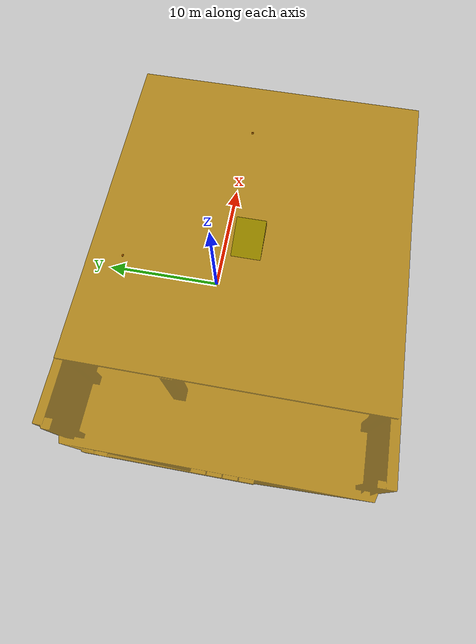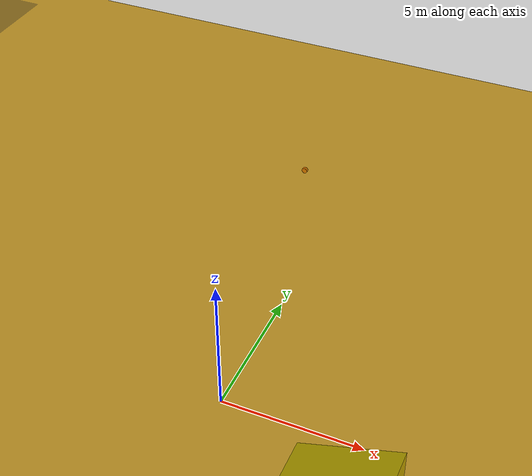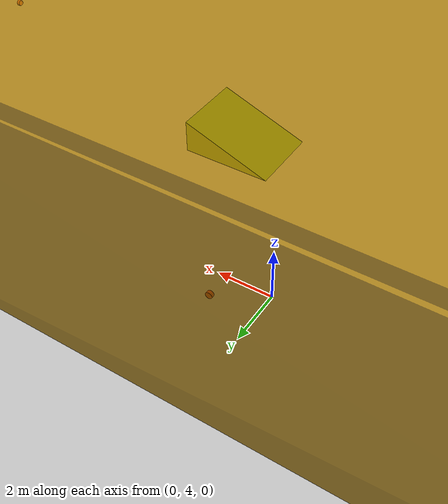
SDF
<?xml version="1.0" ?>
<!--
  You can echo lidar messages using:
    ign topic -e -t /lidar
-->
<sdf version="1.6">
  <world name="visualize_lidar_world">
    <physics name="1ms" type="ignored">
      <max_step_size>0.01</max_step_size>
      <real_time_factor>1.0</real_time_factor>
    </physics>

    <gui fullscreen="0">

      <!-- 3D scene -->
      <plugin filename="MinimalScene" name="3D View">
        <ignition-gui>
          <title>3D View</title>
          <property type="bool" key="showTitleBar">false</property>
          <property type="string" key="state">docked</property>
        </ignition-gui>

        <engine>ogre2</engine>
        <scene>scene</scene>
        <ambient_light>0.4 0.4 0.4</ambient_light>
        <background_color>0.8 0.8 0.8</background_color>
        <camera_pose>-6 0 6 0 0.5 0</camera_pose>
      </plugin>

      <!-- Plugins that add functionality to the scene -->
      <plugin filename="EntityContextMenuPlugin" name="Entity context menu">
        <ignition-gui>
          <property key="state" type="string">floating</property>
          <property key="width" type="double">5</property>
          <property key="height" type="double">5</property>
          <property key="showTitleBar" type="bool">false</property>
        </ignition-gui>
      </plugin>
      <plugin filename="GzSceneManager" name="Scene Manager">
        <ignition-gui>
          <property key="resizable" type="bool">false</property>
          <property key="width" type="double">5</property>
          <property key="height" type="double">5</property>
          <property key="state" type="string">floating</property>
          <property key="showTitleBar" type="bool">false</property>
        </ignition-gui>
      </plugin>
      <plugin filename="InteractiveViewControl" name="Interactive view control">
        <ignition-gui>
          <property key="resizable" type="bool">false</property>
          <property key="width" type="double">5</property>
          <property key="height" type="double">5</property>
          <property key="state" type="string">floating</property>
          <property key="showTitleBar" type="bool">false</property>
        </ignition-gui>
      </plugin>
      <plugin filename="CameraTracking" name="Camera Tracking">
        <ignition-gui>
          <property key="resizable" type="bool">false</property>
          <property key="width" type="double">5</property>
          <property key="height" type="double">5</property>
          <property key="state" type="string">floating</property>
          <property key="showTitleBar" type="bool">false</property>
        </ignition-gui>
      </plugin>
      <!-- World control -->
      <plugin filename="WorldControl" name="World control">
        <ignition-gui>
          <title>World control</title>
          <property type="bool" key="showTitleBar">false</property>
          <property type="bool" key="resizable">false</property>
          <property type="double" key="height">72</property>
          <property type="double" key="width">121</property>
          <property type="double" key="z">1</property>

          <property type="string" key="state">floating</property>
          <anchors target="3D View">
            <line own="left" target="left"/>
            <line own="bottom" target="bottom"/>
          </anchors>
        </ignition-gui>

        <play_pause>true</play_pause>
        <step>true</step>
        <start_paused>true</start_paused>
        <use_event>true</use_event>

      </plugin>

      <!-- World statistics -->
      <plugin filename="WorldStats" name="World stats">
        <ignition-gui>
          <title>World stats</title>
          <property type="bool" key="showTitleBar">false</property>
          <property type="bool" key="resizable">false</property>
          <property type="double" key="height">110</property>
          <property type="double" key="width">290</property>
          <property type="double" key="z">1</property>

          <property type="string" key="state">floating</property>
          <anchors target="3D View">
            <line own="right" target="right"/>
            <line own="bottom" target="bottom"/>
          </anchors>
        </ignition-gui>

        <sim_time>true</sim_time>
        <real_time>true</real_time>
        <real_time_factor>true</real_time_factor>
        <iterations>true</iterations>
      </plugin>

      <!-- Inspector -->
      <plugin filename="ComponentInspector" name="Component inspector">
        <ignition-gui>
          <property type="string" key="state">docked</property>
        </ignition-gui>
      </plugin>

      <!-- Entity tree -->
      <plugin filename="EntityTree" name="Entity tree">
        <ignition-gui>
          <property type="string" key="state">docked</property>
        </ignition-gui>
      </plugin>
    </gui>

    <light type="directional" name="sun">
      <cast_shadows>false</cast_shadows>
      <pose>0 0 80 0 0 0</pose>
      <diffuse>0.8 0.8 0.8 1</diffuse>
      <specular>0.2 0.2 0.2 1</specular>
      <attenuation>
        <range>1000</range>
        <constant>0.9</constant>
        <linear>0.01</linear>
        <quadratic>0.001</quadratic>
      </attenuation>
      <direction>-0.5 0.1 -0.9</direction>
    </light>

    <include>
      <pose>0 0 0 0 0 0</pose>
      <uri>model://lab_131</uri>
    </include>

    <include>
      <pose>0 0 0 0 0 0</pose>
      <uri>model://markers</uri>
    </include>

    <include>
      <pose>3 -3.5 0.15 0 0 0</pose>
      <uri>model://ramp</uri>
    </include>
  </world>
</sdf>

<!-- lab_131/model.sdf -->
<sdf version="1.5">
  <model name="lab_131">
    <pose>0 0 0 0 0 0</pose>
      <static>true</static>
      <link name="lab">
        <collision name="collision">
          <geometry>
            <mesh>
              <uri>meshes/labpillars.obj</uri>
            </mesh>
          </geometry>
        </collision>
        <visual name="visual">
          <geometry>
            <mesh>
              <uri>meshes/labpillars.obj</uri>
            </mesh>
          </geometry>
          <material>
            <ambient>0.7 0.5 0 0.8</ambient>
            <diffuse>0.7 0.5 0 0.8</diffuse>
            <specular>1 1 1 0.8</specular>
          </material>
        </visual>
      </link>
    </model>
</sdf>

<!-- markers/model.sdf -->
<sdf version="1.5">
  <model name="markers">
    <static>true</static>
    <link name="marker_1">
      <pose>-0.35 7.9 4 0 1.5707 1.5707</pose>
        <collision name="collision">
          <geometry>
            <cylinder>
              <length>0.1</length>
              <radius>0.1</radius>
            </cylinder>
          </geometry>
        </collision>
        <visual name="visual">
          <material>
              <ambient>1 0 0 1</ambient>
              <diffuse>1 0 0 1</diffuse>
              <specular>1 1 1 1</specular>
          </material>
          <geometry>
            <cylinder>
              <length>0.1</length>
              <radius>0.1</radius>
            </cylinder>
          </geometry>
        </visual>
      </link>

      <link name="marker_2">
      <pose>14.25 -0.8 4 0 1.5707 0</pose>
        <collision name="collision">
          <geometry>
            <cylinder>
              <length>0.1</length>
              <radius>0.1</radius>
            </cylinder>
          </geometry>
        </collision>
        <visual name="visual">
          <material>
              <ambient>1 0 0 1</ambient>
              <diffuse>1 0 0 1</diffuse>
              <specular>1 1 1 1</specular>
          </material>
          <geometry>
            <cylinder>
              <length>0.1</length>
              <radius>0.1</radius>
            </cylinder>
          </geometry>
        </visual>
      </link>

      <plugin filename="libLocalPosePublisher.so" name="ignition::gazebo::systems::LocalPosePublisher">
        <set_subscriber_topic_name>/marker_id</set_subscriber_topic_name>
      </plugin>
    </model>
</sdf>

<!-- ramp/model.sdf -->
<sdf version="1.5">
  <model name="ramp">
    <link name="ramp">
        <visual name="visual">
        <material>
            <ambient>0.2 0.7 0 0.9</ambient>
            <diffuse>0.2 0.7 0 0.9</diffuse>
            <specular>1 1 1 0.9</specular>
        </material>
          <geometry>
            <mesh><uri>meshes/ramp.stl</uri></mesh>
          </geometry>
        </visual>
        <collision name="collision">
          <geometry>
            <mesh><uri>meshes/ramp.stl</uri></mesh>
          </geometry>
          <surface>
            <friction>
              <ode>
                <mu>10000</mu>
                <mu2>10000</mu2>
                <slip1>0.000000</slip1>
                <slip2>0.000000</slip2>
              </ode>
            </friction>
          </surface>
        </collision>
      </link>
    </model>
</sdf>
